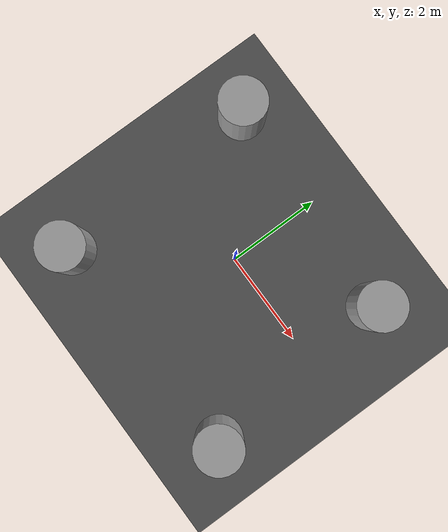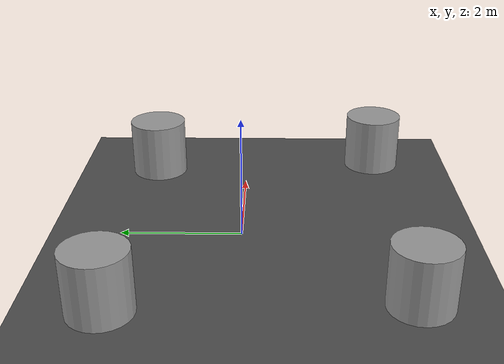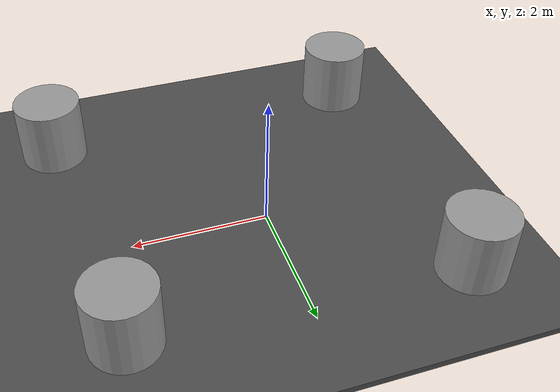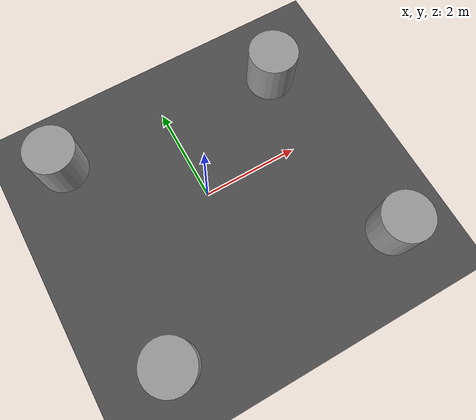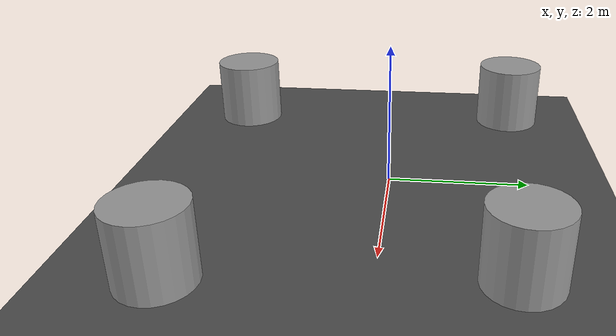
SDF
<sdf version="1.6">
 <world name="default">
  <light name="sun" type="directional">
   <pose>0 0 10 0 -0 0</pose>
   <diffuse>0.8 0.8 0.8 1</diffuse>
   <specular>0.2 0.2 0.2 1</specular>
   <attenuation>
    <range>1000</range>
    <constant>0.9</constant>
    <linear>0.01</linear>
    <quadratic>0.001</quadratic>
   </attenuation>
   <direction>-0.5 0.1 -0.9</direction>
  </light>
  <model name="ground_plane">
   <static>1</static>
   <link name="link">
    <collision name="collision">
     <geometry><plane><normal>0 0 1</normal><size>100 100</size></plane></geometry>
     <surface>
      <contact><collide_bitmask>65535</collide_bitmask></contact>
      <friction><ode><mu>100</mu><mu2>50</mu2></ode></friction>
     </surface>
    </collision>
    <visual name="visual">
     <cast_shadows>0</cast_shadows>
     <geometry><plane><normal>0 0 1</normal><size>100 100</size></plane></geometry>
     <material>
      <script><uri>file://media/materials/scripts/gazebo.material</uri><name>Gazebo/Grey</name></script>
     </material>
    </visual>
   </link>
  </model>
  <gravity>0 0 -9.8</gravity>
  <magnetic_field>6e-06 2.3e-05 -4.2e-05</magnetic_field>
  <atmosphere type="adiabatic"/>
  <physics name="default_physics" default="0" type="ode">
   <max_step_size>0.001</max_step_size>
   <real_time_factor>1</real_time_factor>
   <real_time_update_rate>1000</real_time_update_rate>
  </physics>
  <scene><ambient>0.4 0.4 0.4 1</ambient><background>0.7 0.7 0.7 1</background><shadows>1</shadows></scene>
  <audio><device>default</device></audio>
  <spherical_coordinates>
   <surface_model>EARTH_WGS84</surface_model>
   <latitude_deg>0</latitude_deg>
   <longitude_deg>0</longitude_deg>
   <elevation>0</elevation>
   <heading_deg>0</heading_deg>
  </spherical_coordinates>
  <model name="asphalt_plane">
   <static>1</static>
   <link name="link">
    <collision name="collision"><geometry><box><size>20 20 0.1</size></box></geometry></collision>
    <visual name="visual">
     <cast_shadows>0</cast_shadows>
     <geometry><box><size>20 20 0.1</size></box></geometry>
     <material>
      <script>
       <uri>model://asphalt_plane/materials/scripts</uri>
       <uri>model://asphalt_plane/materials/textures</uri>
       <name>vrc/asphalt</name>
      </script>
     </material>
    </visual>
   </link>
   <pose>0.145378 0.088932 0 0 -0 0</pose>
  </model>
  <model name="unit_cylinder">
   <pose>-2.2987 1.87861 0.549992 -3e-06 -1e-06 4.9e-05</pose>
   <link name="link">
    <inertial>
     <mass>1</mass>
     <inertia><ixx>0.145833</ixx><ixy>0</ixy><ixz>0</ixz><iyy>0.145833</iyy><iyz>0</iyz><izz>0.125</izz></inertia>
    </inertial>
    <collision name="collision">
     <geometry><cylinder><radius>0.5</radius><length>1</length></cylinder></geometry>
    </collision>
    <visual name="visual">
     <geometry><cylinder><radius>0.5</radius><length>1</length></cylinder></geometry>
     <material>
      <script><name>Gazebo/Grey</name><uri>file://media/materials/scripts/gazebo.material</uri></script>
     </material>
    </visual>
   </link>
  </model>
  <model name="unit_cylinder_0">
   <pose>-2.10495 -2.57846 0.54999 0 -0 1e-05</pose>
   <link name="link">
    <inertial>
     <mass>1</mass>
     <inertia><ixx>0.145833</ixx><ixy>0</ixy><ixz>0</ixz><iyy>0.145833</iyy><iyz>0</iyz><izz>0.125</izz></inertia>
    </inertial>
    <collision name="collision">
     <geometry><cylinder><radius>0.5</radius><length>1</length></cylinder></geometry>
    </collision>
    <visual name="visual">
     <geometry><cylinder><radius>0.5</radius><length>1</length></cylinder></geometry>
     <material>
      <script><name>Gazebo/Grey</name><uri>file://media/materials/scripts/gazebo.material</uri></script>
     </material>
    </visual>
   </link>
  </model>
  <model name="unit_cylinder_1">
   <pose>2.42522 1.65965 0.54999 0 -0 1.7e-05</pose>
   <link name="link">
    <inertial>
     <mass>1</mass>
     <inertia><ixx>0.145833</ixx><ixy>0</ixy><ixz>0</ixz><iyy>0.145833</iyy><iyz>0</iyz><izz>0.125</izz></inertia>
    </inertial>
    <collision name="collision">
     <geometry><cylinder><radius>0.5</radius><length>1</length></cylinder></geometry>
    </collision>
    <visual name="visual">
     <geometry><cylinder><radius>0.5</radius><length>1</length></cylinder></geometry>
     <material>
      <script><name>Gazebo/Grey</name><uri>file://media/materials/scripts/gazebo.material</uri></script>
     </material>
    </visual>
   </link>
  </model>
  <model name="unit_cylinder_2">
   <pose>2.75307 -2.41565 0.549997 6e-06 1e-06 0</pose>
   <link name="link">
    <inertial>
     <mass>1</mass>
     <inertia><ixx>0.145833</ixx><ixy>0</ixy><ixz>0</ixz><iyy>0.145833</iyy><iyz>0</iyz><izz>0.125</izz></inertia>
    </inertial>
    <collision name="collision">
     <geometry><cylinder><radius>0.5</radius><length>1</length></cylinder></geometry>
    </collision>
    <visual name="visual">
     <geometry><cylinder><radius>0.5</radius><length>1</length></cylinder></geometry>
     <material>
      <script><name>Gazebo/Grey</name><uri>file://media/materials/scripts/gazebo.material</uri></script>
     </material>
    </visual>
   </link>
  </model>
 </world>
</sdf>
